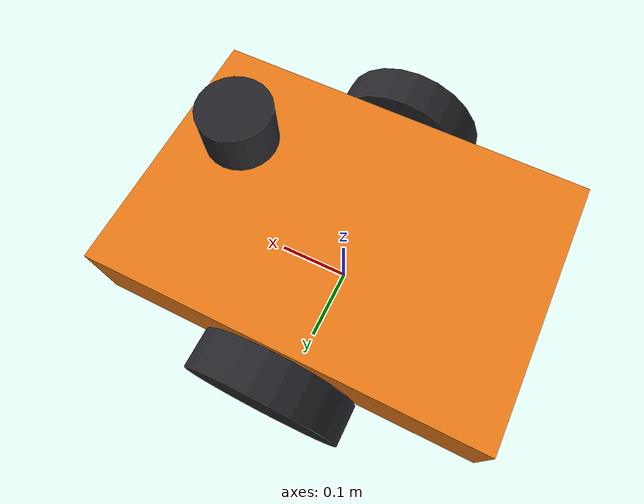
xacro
<?xml version="1.0"?>
<!-- Differential-drive robot for Gazebo Harmonic (gz-sim 8).
     Uses gz-sim system plugins (NOT Gazebo Classic libgazebo_ros_* plugins). -->
<robot xmlns:xacro="http://www.ros.org/wiki/xacro" name="diwali_bot">

  <xacro:property name="wheel_r" value="0.10"/>
  <xacro:property name="wheel_w" value="0.05"/>
  <xacro:property name="track"   value="0.40"/>   <!-- wheel separation -->
  <xacro:property name="body_x"  value="0.50"/>
  <xacro:property name="body_y"  value="0.34"/>
  <xacro:property name="body_z"  value="0.10"/>
  <xacro:property name="body_m"  value="8.0"/>
  <xacro:property name="wheel_m" value="0.8"/>

  <xacro:macro name="material_rgba" params="name r g b">
    <material name="${name}"><color rgba="${r} ${g} ${b} 1"/></material>
  </xacro:macro>
  <xacro:material_rgba name="saffron" r="0.95" g="0.5" b="0.1"/>
  <xacro:material_rgba name="charcoal" r="0.15" g="0.15" b="0.17"/>
  <xacro:material_rgba name="steel" r="0.6" g="0.62" b="0.65"/>

  <!-- ===== links ===== -->
  <link name="base_footprint"/>

  <link name="base_link">
    <visual>
      <origin xyz="0 0 0.03"/>
      <geometry><box size="${body_x} ${body_y} ${body_z}"/></geometry>
      <material name="saffron"/>
    </visual>
    <collision>
      <origin xyz="0 0 0.03"/>
      <geometry><box size="${body_x} ${body_y} ${body_z}"/></geometry>
    </collision>
    <inertial>
      <origin xyz="0 0 0.03"/>
      <mass value="${body_m}"/>
      <inertia ixx="${body_m*(body_y*body_y+body_z*body_z)/12}" ixy="0" ixz="0"
               iyy="${body_m*(body_x*body_x+body_z*body_z)/12}" iyz="0"
               izz="${body_m*(body_x*body_x+body_y*body_y)/12}"/>
    </inertial>
  </link>

  <xacro:macro name="wheel" params="side y">
    <link name="${side}_wheel_link">
      <visual>
        <origin rpy="${pi/2} 0 0"/>
        <geometry><cylinder radius="${wheel_r}" length="${wheel_w}"/></geometry>
        <material name="charcoal"/>
      </visual>
      <collision>
        <origin rpy="${pi/2} 0 0"/>
        <geometry><cylinder radius="${wheel_r}" length="${wheel_w}"/></geometry>
      </collision>
      <inertial>
        <mass value="${wheel_m}"/>
        <inertia ixx="${wheel_m*(3*wheel_r*wheel_r+wheel_w*wheel_w)/12}" ixy="0" ixz="0"
                 iyy="${wheel_m*wheel_r*wheel_r/2}" iyz="0"
                 izz="${wheel_m*(3*wheel_r*wheel_r+wheel_w*wheel_w)/12}"/>
      </inertial>
    </link>
    <joint name="${side}_wheel_joint" type="continuous">
      <parent link="base_link"/>
      <child link="${side}_wheel_link"/>
      <origin xyz="0 ${y} 0"/>
      <axis xyz="0 1 0"/>
    </joint>
    <gazebo reference="${side}_wheel_link"><mu1>1.0</mu1><mu2>1.0</mu2></gazebo>
  </xacro:macro>
  <xacro:wheel side="left"  y="${track/2}"/>
  <xacro:wheel side="right" y="${-track/2}"/>

  <xacro:macro name="caster" params="name x">
    <link name="${name}_link">
      <visual><geometry><sphere radius="0.05"/></geometry><material name="steel"/></visual>
      <collision><geometry><sphere radius="0.05"/></geometry></collision>
      <inertial>
        <mass value="0.2"/>
        <inertia ixx="0.0002" ixy="0" ixz="0" iyy="0.0002" iyz="0" izz="0.0002"/>
      </inertial>
    </link>
    <joint name="${name}_joint" type="fixed">
      <parent link="base_link"/>
      <child link="${name}_link"/>
      <origin xyz="${x} 0 -0.05"/>
    </joint>
    <!-- frictionless so the caster never fights the driven wheels -->
    <gazebo reference="${name}_link"><mu1>0.0</mu1><mu2>0.0</mu2></gazebo>
  </xacro:macro>
  <xacro:caster name="caster_front" x="0.2"/>
  <xacro:caster name="caster_rear"  x="-0.2"/>

  <link name="lidar_link">
    <visual><geometry><cylinder radius="0.04" length="0.05"/></geometry><material name="charcoal"/></visual>
    <inertial>
      <mass value="0.2"/>
      <inertia ixx="0.0001" ixy="0" ixz="0" iyy="0.0001" iyz="0" izz="0.0001"/>
    </inertial>
  </link>

  <!-- ===== joints ===== -->
  <joint name="base_footprint_joint" type="fixed">
    <parent link="base_footprint"/>
    <child link="base_link"/>
    <origin xyz="0 0 ${wheel_r}"/>
  </joint>
  <joint name="lidar_joint" type="fixed">
    <parent link="base_link"/>
    <child link="lidar_link"/>
    <origin xyz="0.12 0 0.20"/>
  </joint>

  <!-- ===== Gazebo Harmonic systems ===== -->
  <gazebo>
    <plugin filename="gz-sim-diff-drive-system" name="gz::sim::systems::DiffDrive">
      <left_joint>left_wheel_joint</left_joint>
      <right_joint>right_wheel_joint</right_joint>
      <wheel_separation>${track}</wheel_separation>
      <wheel_radius>${wheel_r}</wheel_radius>
      <odom_publish_frequency>30</odom_publish_frequency>
      <topic>cmd_vel</topic>
      <!-- wheel odometry stays inside Gazebo; odom -> base_footprint comes from the OdometryPublisher below -->
      <odom_topic>wheel_odom</odom_topic>
      <tf_topic>wheel_tf</tf_topic>
      <frame_id>odom</frame_id>
      <child_frame_id>base_footprint</child_frame_id>
      <max_linear_velocity>0.8</max_linear_velocity>
      <max_angular_velocity>1.5</max_angular_velocity>
      <max_linear_acceleration>1.5</max_linear_acceleration>
      <min_linear_acceleration>-1.5</min_linear_acceleration>
      <max_angular_acceleration>3.0</max_angular_acceleration>
      <min_angular_acceleration>-3.0</min_angular_acceleration>
    </plugin>
    <plugin filename="gz-sim-odometry-publisher-system" name="gz::sim::systems::OdometryPublisher">
      <odom_frame>odom</odom_frame>
      <robot_base_frame>base_footprint</robot_base_frame>
      <odom_topic>odom</odom_topic>
      <tf_topic>tf</tf_topic>
      <odom_publish_frequency>30</odom_publish_frequency>
      <dimensions>2</dimensions>
    </plugin>
    <plugin filename="gz-sim-joint-state-publisher-system" name="gz::sim::systems::JointStatePublisher">
      <topic>joint_states</topic>
      <joint_name>left_wheel_joint</joint_name>
      <joint_name>right_wheel_joint</joint_name>
    </plugin>
  </gazebo>

  <!-- gpu_lidar is RENDERING-based: it sees every visual in its plane (not only collisions).
       The world keeps decorations out of the 0.30 m scan plane near the road. -->
  <gazebo reference="lidar_link">
    <sensor name="lidar" type="gpu_lidar">
      <topic>scan</topic>
      <gz_frame_id>lidar_link</gz_frame_id>
      <update_rate>10</update_rate>
      <always_on>true</always_on>
      <visualize>false</visualize>
      <lidar>
        <scan>
          <horizontal>
            <samples>720</samples>
            <resolution>1</resolution>
            <min_angle>-3.14159</min_angle>
            <max_angle>3.14159</max_angle>
          </horizontal>
        </scan>
        <range><min>0.15</min><max>12.0</max><resolution>0.01</resolution></range>
        <noise><type>gaussian</type><mean>0.0</mean><stddev>0.01</stddev></noise>
      </lidar>
    </sensor>
  </gazebo>
</robot>
